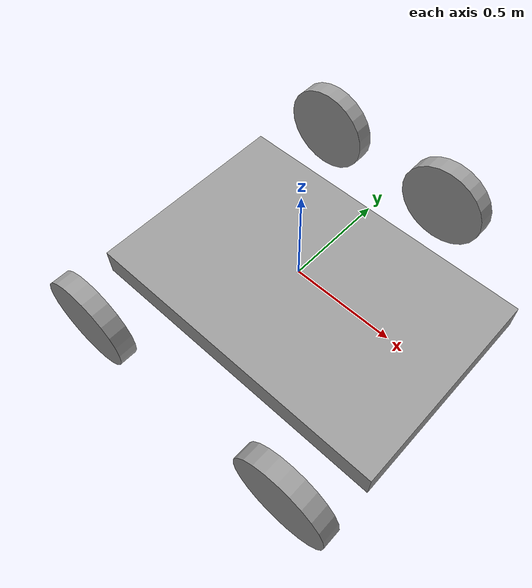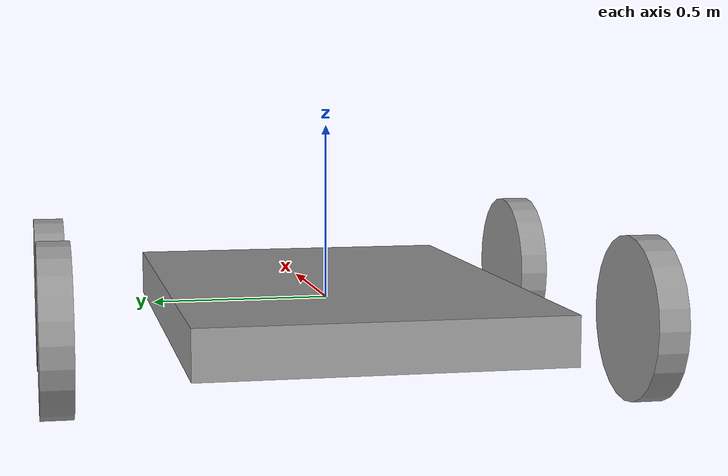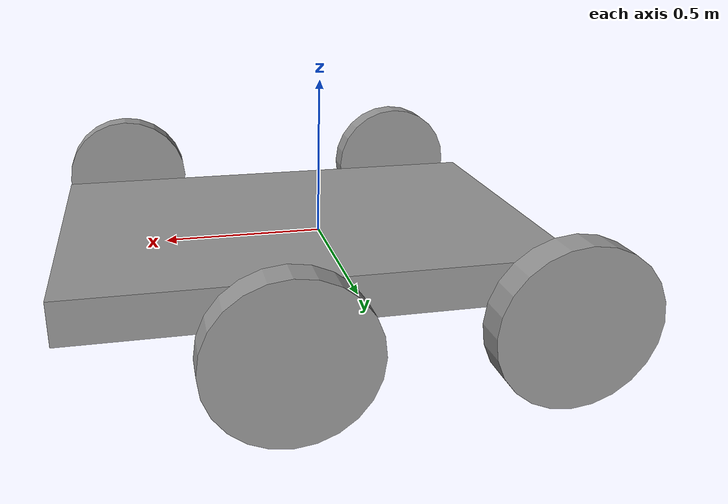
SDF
<?xml version='1.0'?>
<sdf version='1.6'>
  <model name='trial'>
    <link name='link_0'>
      <inertial>
        <mass>0.205443</mass>
        <inertia>
          <ixx>0.0174354</ixx>
          <ixy>0</ixy>
          <ixz>0</ixz>
          <iyy>0.0395861</iyy>
          <iyz>0</iyz>
          <izz>0.0563914</izz>
        </inertia>
        <pose>0 0 0 0 -0 0</pose>
      </inertial>
      <pose>0.074283 -0.031939 -0.026447 0 -0 0</pose>
      <gravity>1</gravity>
      <self_collide>0</self_collide>
      <kinematic>0</kinematic>
      <enable_wind>0</enable_wind>
      <visual name='visual'>
        <pose>0 0 0 0 -0 0</pose>
        <geometry>
          <box>
            <size>1.51454 1 0.13566</size>
          </box>
        </geometry>
        <material>
          <lighting>1</lighting>
          <script>
            <uri>file://media/materials/scripts/gazebo.material</uri>
            <name>Gazebo/Grey</name>
          </script>
          <shader type='pixel'>
            <normal_map>__default__</normal_map>
          </shader>
          <emissive>0 0 0 1</emissive>
        </material>
        <transparency>0</transparency>
        <cast_shadows>1</cast_shadows>
      </visual>
      <collision name='collision'>
        <laser_retro>0</laser_retro>
        <max_contacts>10</max_contacts>
        <pose>0 0 0 0 -0 0</pose>
        <geometry>
          <box>
            <size>1.51454 1 0.13566</size>
          </box>
        </geometry>
        <surface>
          <friction>
            <ode>
              <mu>1</mu>
              <mu2>1</mu2>
              <fdir1>0 0 0</fdir1>
              <slip1>0</slip1>
              <slip2>0</slip2>
            </ode>
            <torsional>
              <coefficient>1</coefficient>
              <patch_radius>0</patch_radius>
              <surface_radius>0</surface_radius>
              <use_patch_radius>1</use_patch_radius>
              <ode>
                <slip>0</slip>
              </ode>
            </torsional>
          </friction>
          <bounce>
            <restitution_coefficient>0</restitution_coefficient>
            <threshold>1e+06</threshold>
          </bounce>
          <contact>
            <collide_without_contact>0</collide_without_contact>
            <collide_without_contact_bitmask>1</collide_without_contact_bitmask>
            <collide_bitmask>1</collide_bitmask>
            <ode>
              <soft_cfm>0</soft_cfm>
              <soft_erp>0.2</soft_erp>
              <kp>1e+13</kp>
              <kd>1</kd>
              <max_vel>0.01</max_vel>
              <min_depth>0</min_depth>
            </ode>
            <bullet>
              <split_impulse>1</split_impulse>
              <split_impulse_penetration_threshold>-0.01</split_impulse_penetration_threshold>
              <soft_cfm>0</soft_cfm>
              <soft_erp>0.2</soft_erp>
              <kp>1e+13</kp>
              <kd>1</kd>
            </bullet>
          </contact>
        </surface>
      </collision>
    </link>
    <link name='link_2'>
      <inertial>
        <mass>0.0174037</mass>
        <inertia>
          <ixx>0.000233463</ixx>
          <ixy>0</ixy>
          <ixz>0</ixz>
          <iyy>0.000233463</iyy>
          <iyz>0</iyz>
          <izz>0.000446063</izz>
        </inertia>
        <pose>0 0 0 1.707 -0 0</pose>
      </inertial>
      <pose>-0.487044 -0.775413 -0.006123 1.5707 -0 0</pose>
      <gravity>1</gravity>
      <self_collide>0</self_collide>
      <kinematic>0</kinematic>
      <enable_wind>0</enable_wind>
      <visual name='visual'>
        <pose>0 0 0 0 -0 0</pose>
        <geometry>
          <cylinder>
            <radius>0.226408</radius>
            <length>0.0848081</length>
          </cylinder>
        </geometry>
        <material>
          <lighting>1</lighting>
          <script>
            <uri>file://media/materials/scripts/gazebo.material</uri>
            <name>Gazebo/Grey</name>
          </script>
          <shader type='pixel'>
            <normal_map>__default__</normal_map>
          </shader>
          <ambient>0.3 0.3 0.3 1</ambient>
          <diffuse>0.7 0.7 0.7 1</diffuse>
          <specular>0.01 0.01 0.01 1</specular>
          <emissive>0 0 0 1</emissive>
        </material>
        <transparency>0</transparency>
        <cast_shadows>1</cast_shadows>
      </visual>
      <collision name='collision'>
        <laser_retro>0</laser_retro>
        <max_contacts>10</max_contacts>
        <pose>0 0 0 0 -0 0</pose>
        <geometry>
          <cylinder>
            <radius>0.226408</radius>
            <length>0.084808</length>
          </cylinder>
        </geometry>
        <surface>
          <friction>
            <ode>
              <mu>1</mu>
              <mu2>1</mu2>
              <fdir1>0 0 0</fdir1>
              <slip1>0</slip1>
              <slip2>0</slip2>
            </ode>
            <torsional>
              <coefficient>1</coefficient>
              <patch_radius>0</patch_radius>
              <surface_radius>0</surface_radius>
              <use_patch_radius>1</use_patch_radius>
              <ode>
                <slip>0</slip>
              </ode>
            </torsional>
          </friction>
          <bounce>
            <restitution_coefficient>0</restitution_coefficient>
            <threshold>1e+06</threshold>
          </bounce>
          <contact>
            <collide_without_contact>0</collide_without_contact>
            <collide_without_contact_bitmask>1</collide_without_contact_bitmask>
            <collide_bitmask>1</collide_bitmask>
            <ode>
              <soft_cfm>0</soft_cfm>
              <soft_erp>0.2</soft_erp>
              <kp>1e+13</kp>
              <kd>1</kd>
              <max_vel>0.01</max_vel>
              <min_depth>0</min_depth>
            </ode>
            <bullet>
              <split_impulse>1</split_impulse>
              <split_impulse_penetration_threshold>-0.01</split_impulse_penetration_threshold>
              <soft_cfm>0</soft_cfm>
              <soft_erp>0.2</soft_erp>
              <kp>1e+13</kp>
              <kd>1</kd>
            </bullet>
          </contact>
        </surface>
      </collision>
    </link>
    <link name='link_2_clone'>
      <inertial>
        <mass>0.0174037</mass>
        <inertia>
          <ixx>0.000233463</ixx>
          <ixy>0</ixy>
          <ixz>0</ixz>
          <iyy>0.000233463</iyy>
          <iyz>0</iyz>
          <izz>0.000446063</izz>
        </inertia>
        <pose>0 0 0 1.707 -0 0</pose>
      </inertial>
      <pose>0.62408 -0.771377 -0.006123 1.5707 -0 0</pose>
      <gravity>1</gravity>
      <self_collide>0</self_collide>
      <kinematic>0</kinematic>
      <enable_wind>0</enable_wind>
      <visual name='visual'>
        <pose>0 0 0 0 -0 0</pose>
        <geometry>
          <cylinder>
            <radius>0.226408</radius>
            <length>0.0848081</length>
          </cylinder>
        </geometry>
        <material>
          <lighting>1</lighting>
          <script>
            <uri>file://media/materials/scripts/gazebo.material</uri>
            <name>Gazebo/Grey</name>
          </script>
          <shader type='pixel'>
            <normal_map>__default__</normal_map>
          </shader>
          <ambient>0.3 0.3 0.3 1</ambient>
          <diffuse>0.7 0.7 0.7 1</diffuse>
          <specular>0.01 0.01 0.01 1</specular>
          <emissive>0 0 0 1</emissive>
        </material>
        <transparency>0</transparency>
        <cast_shadows>1</cast_shadows>
      </visual>
      <collision name='collision'>
        <laser_retro>0</laser_retro>
        <max_contacts>10</max_contacts>
        <pose>0 0 0 0 -0 0</pose>
        <geometry>
          <cylinder>
            <radius>0.226408</radius>
            <length>0.084808</length>
          </cylinder>
        </geometry>
        <surface>
          <friction>
            <ode>
              <mu>1</mu>
              <mu2>1</mu2>
              <fdir1>0 0 0</fdir1>
              <slip1>0</slip1>
              <slip2>0</slip2>
            </ode>
            <torsional>
              <coefficient>1</coefficient>
              <patch_radius>0</patch_radius>
              <surface_radius>0</surface_radius>
              <use_patch_radius>1</use_patch_radius>
              <ode>
                <slip>0</slip>
              </ode>
            </torsional>
          </friction>
          <bounce>
            <restitution_coefficient>0</restitution_coefficient>
            <threshold>1e+06</threshold>
          </bounce>
          <contact>
            <collide_without_contact>0</collide_without_contact>
            <collide_without_contact_bitmask>1</collide_without_contact_bitmask>
            <collide_bitmask>1</collide_bitmask>
            <ode>
              <soft_cfm>0</soft_cfm>
              <soft_erp>0.2</soft_erp>
              <kp>1e+13</kp>
              <kd>1</kd>
              <max_vel>0.01</max_vel>
              <min_depth>0</min_depth>
            </ode>
            <bullet>
              <split_impulse>1</split_impulse>
              <split_impulse_penetration_threshold>-0.01</split_impulse_penetration_threshold>
              <soft_cfm>0</soft_cfm>
              <soft_erp>0.2</soft_erp>
              <kp>1e+13</kp>
              <kd>1</kd>
            </bullet>
          </contact>
        </surface>
      </collision>
    </link>
    <link name='link_2_clone_0'>
      <inertial>
        <mass>0.0174037</mass>
        <inertia>
          <ixx>0.000233463</ixx>
          <ixy>0</ixy>
          <ixz>0</ixz>
          <iyy>0.000233463</iyy>
          <iyz>0</iyz>
          <izz>0.000446063</izz>
        </inertia>
        <pose>0 0 0 1.707 -0 0</pose>
      </inertial>
      <pose>-0.484673 0.789901 0.013298 1.5707 -0 0</pose>
      <gravity>1</gravity>
      <self_collide>0</self_collide>
      <kinematic>0</kinematic>
      <enable_wind>0</enable_wind>
      <visual name='visual'>
        <pose>0 0 0 0 -0 0</pose>
        <geometry>
          <cylinder>
            <radius>0.226408</radius>
            <length>0.0848081</length>
          </cylinder>
        </geometry>
        <material>
          <lighting>1</lighting>
          <script>
            <uri>file://media/materials/scripts/gazebo.material</uri>
            <name>Gazebo/Grey</name>
          </script>
          <shader type='pixel'>
            <normal_map>__default__</normal_map>
          </shader>
          <ambient>0.3 0.3 0.3 1</ambient>
          <diffuse>0.7 0.7 0.7 1</diffuse>
          <specular>0.01 0.01 0.01 1</specular>
          <emissive>0 0 0 1</emissive>
        </material>
        <transparency>0</transparency>
        <cast_shadows>1</cast_shadows>
      </visual>
      <collision name='collision'>
        <laser_retro>0</laser_retro>
        <max_contacts>10</max_contacts>
        <pose>0 0 0 0 -0 0</pose>
        <geometry>
          <cylinder>
            <radius>0.226408</radius>
            <length>0.084808</length>
          </cylinder>
        </geometry>
        <surface>
          <friction>
            <ode>
              <mu>1</mu>
              <mu2>1</mu2>
              <fdir1>0 0 0</fdir1>
              <slip1>0</slip1>
              <slip2>0</slip2>
            </ode>
            <torsional>
              <coefficient>1</coefficient>
              <patch_radius>0</patch_radius>
              <surface_radius>0</surface_radius>
              <use_patch_radius>1</use_patch_radius>
              <ode>
                <slip>0</slip>
              </ode>
            </torsional>
          </friction>
          <bounce>
            <restitution_coefficient>0</restitution_coefficient>
            <threshold>1e+06</threshold>
          </bounce>
          <contact>
            <collide_without_contact>0</collide_without_contact>
            <collide_without_contact_bitmask>1</collide_without_contact_bitmask>
            <collide_bitmask>1</collide_bitmask>
            <ode>
              <soft_cfm>0</soft_cfm>
              <soft_erp>0.2</soft_erp>
              <kp>1e+13</kp>
              <kd>1</kd>
              <max_vel>0.01</max_vel>
              <min_depth>0</min_depth>
            </ode>
            <bullet>
              <split_impulse>1</split_impulse>
              <split_impulse_penetration_threshold>-0.01</split_impulse_penetration_threshold>
              <soft_cfm>0</soft_cfm>
              <soft_erp>0.2</soft_erp>
              <kp>1e+13</kp>
              <kd>1</kd>
            </bullet>
          </contact>
        </surface>
      </collision>
    </link>
    <link name='link_2_clone_1'>
      <inertial>
        <mass>0.0174037</mass>
        <inertia>
          <ixx>0.000233463</ixx>
          <ixy>0</ixy>
          <ixz>0</ixz>
          <iyy>0.000233463</iyy>
          <iyz>0</iyz>
          <izz>0.000446063</izz>
        </inertia>
        <pose>0 0 0 1.707 -0 0</pose>
      </inertial>
      <pose>0.242939 0.78875 -0.006123 1.5707 -0 0</pose>
      <gravity>1</gravity>
      <self_collide>0</self_collide>
      <kinematic>0</kinematic>
      <enable_wind>0</enable_wind>
      <visual name='visual'>
        <pose>0 0 0 0 -0 0</pose>
        <geometry>
          <cylinder>
            <radius>0.226408</radius>
            <length>0.0848081</length>
          </cylinder>
        </geometry>
        <material>
          <lighting>1</lighting>
          <script>
            <uri>file://media/materials/scripts/gazebo.material</uri>
            <name>Gazebo/Grey</name>
          </script>
          <shader type='pixel'>
            <normal_map>__default__</normal_map>
          </shader>
          <ambient>0.3 0.3 0.3 1</ambient>
          <diffuse>0.7 0.7 0.7 1</diffuse>
          <specular>0.01 0.01 0.01 1</specular>
          <emissive>0 0 0 1</emissive>
        </material>
        <transparency>0</transparency>
        <cast_shadows>1</cast_shadows>
      </visual>
      <collision name='collision'>
        <laser_retro>0</laser_retro>
        <max_contacts>10</max_contacts>
        <pose>0 0 0 0 -0 0</pose>
        <geometry>
          <cylinder>
            <radius>0.226408</radius>
            <length>0.084808</length>
          </cylinder>
        </geometry>
        <surface>
          <friction>
            <ode>
              <mu>1</mu>
              <mu2>1</mu2>
              <fdir1>0 0 0</fdir1>
              <slip1>0</slip1>
              <slip2>0</slip2>
            </ode>
            <torsional>
              <coefficient>1</coefficient>
              <patch_radius>0</patch_radius>
              <surface_radius>0</surface_radius>
              <use_patch_radius>1</use_patch_radius>
              <ode>
                <slip>0</slip>
              </ode>
            </torsional>
          </friction>
          <bounce>
            <restitution_coefficient>0</restitution_coefficient>
            <threshold>1e+06</threshold>
          </bounce>
          <contact>
            <collide_without_contact>0</collide_without_contact>
            <collide_without_contact_bitmask>1</collide_without_contact_bitmask>
            <collide_bitmask>1</collide_bitmask>
            <ode>
              <soft_cfm>0</soft_cfm>
              <soft_erp>0.2</soft_erp>
              <kp>1e+13</kp>
              <kd>1</kd>
              <max_vel>0.01</max_vel>
              <min_depth>0</min_depth>
            </ode>
            <bullet>
              <split_impulse>1</split_impulse>
              <split_impulse_penetration_threshold>-0.01</split_impulse_penetration_threshold>
              <soft_cfm>0</soft_cfm>
              <soft_erp>0.2</soft_erp>
              <kp>1e+13</kp>
              <kd>1</kd>
            </bullet>
          </contact>
        </surface>
      </collision>
    </link>
    <joint name='link_0_JOINT_5' type='revolute'>
      <parent>link_0</parent>
      <child>link_2_clone_0</child>
      <pose>0 0 0 0 -0 0</pose>
      <axis>
        <xyz>1 0 0</xyz>
        <limit>
          <lower>-1.79769e+308</lower>
          <upper>1.79769e+308</upper>
          <effort>-1</effort>
          <velocity>-1</velocity>
        </limit>
        <dynamics>
          <spring_reference>0</spring_reference>
          <spring_stiffness>0</spring_stiffness>
          <damping>0</damping>
        </dynamics>
      </axis>
      <physics>
        <ode>
          <limit>
            <cfm>0</cfm>
            <erp>0.2</erp>
          </limit>
          <suspension>
            <cfm>0</cfm>
            <erp>0.2</erp>
          </suspension>
        </ode>
      </physics>
    </joint>
    <joint name='link_0_JOINT_6' type='revolute'>
      <parent>link_0</parent>
      <child>link_2_clone</child>
      <pose>0 0 0 0 -0 0</pose>
      <axis>
        <xyz>1 0 0</xyz>
        <limit>
          <lower>-1.79769e+308</lower>
          <upper>1.79769e+308</upper>
          <effort>-1</effort>
          <velocity>-1</velocity>
        </limit>
        <dynamics>
          <spring_reference>0</spring_reference>
          <spring_stiffness>0</spring_stiffness>
          <damping>0</damping>
        </dynamics>
      </axis>
      <physics>
        <ode>
          <limit>
            <cfm>0</cfm>
            <erp>0.2</erp>
          </limit>
          <suspension>
            <cfm>0</cfm>
            <erp>0.2</erp>
          </suspension>
        </ode>
      </physics>
    </joint>
    <joint name='link_0_JOINT_7' type='revolute'>
      <parent>link_0</parent>
      <child>link_2_clone_1</child>
      <pose>0 0 0 0 -0 0</pose>
      <axis>
        <xyz>1 0 0</xyz>
        <limit>
          <lower>-1.79769e+308</lower>
          <upper>1.79769e+308</upper>
          <effort>-1</effort>
          <velocity>-1</velocity>
        </limit>
        <dynamics>
          <spring_reference>0</spring_reference>
          <spring_stiffness>0</spring_stiffness>
          <damping>0</damping>
        </dynamics>
      </axis>
      <physics>
        <ode>
          <limit>
            <cfm>0</cfm>
            <erp>0.2</erp>
          </limit>
          <suspension>
            <cfm>0</cfm>
            <erp>0.2</erp>
          </suspension>
        </ode>
      </physics>
    </joint>
    <joint name='link_0_JOINT_8' type='revolute'>
      <parent>link_0</parent>
      <child>link_2</child>
      <pose>0 0 0 0 -0 0</pose>
      <axis>
        <xyz>1 0 0</xyz>
        <limit>
          <lower>-1.79769e+308</lower>
          <upper>1.79769e+308</upper>
          <effort>-1</effort>
          <velocity>-1</velocity>
        </limit>
        <dynamics>
          <spring_reference>0</spring_reference>
          <spring_stiffness>0</spring_stiffness>
          <damping>0</damping>
        </dynamics>
      </axis>
      <physics>
        <ode>
          <limit>
            <cfm>0</cfm>
            <erp>0.2</erp>
          </limit>
          <suspension>
            <cfm>0</cfm>
            <erp>0.2</erp>
          </suspension>
        </ode>
      </physics>
    </joint>
    <static>0</static>
    <allow_auto_disable>1</allow_auto_disable>
  </model>
</sdf>
